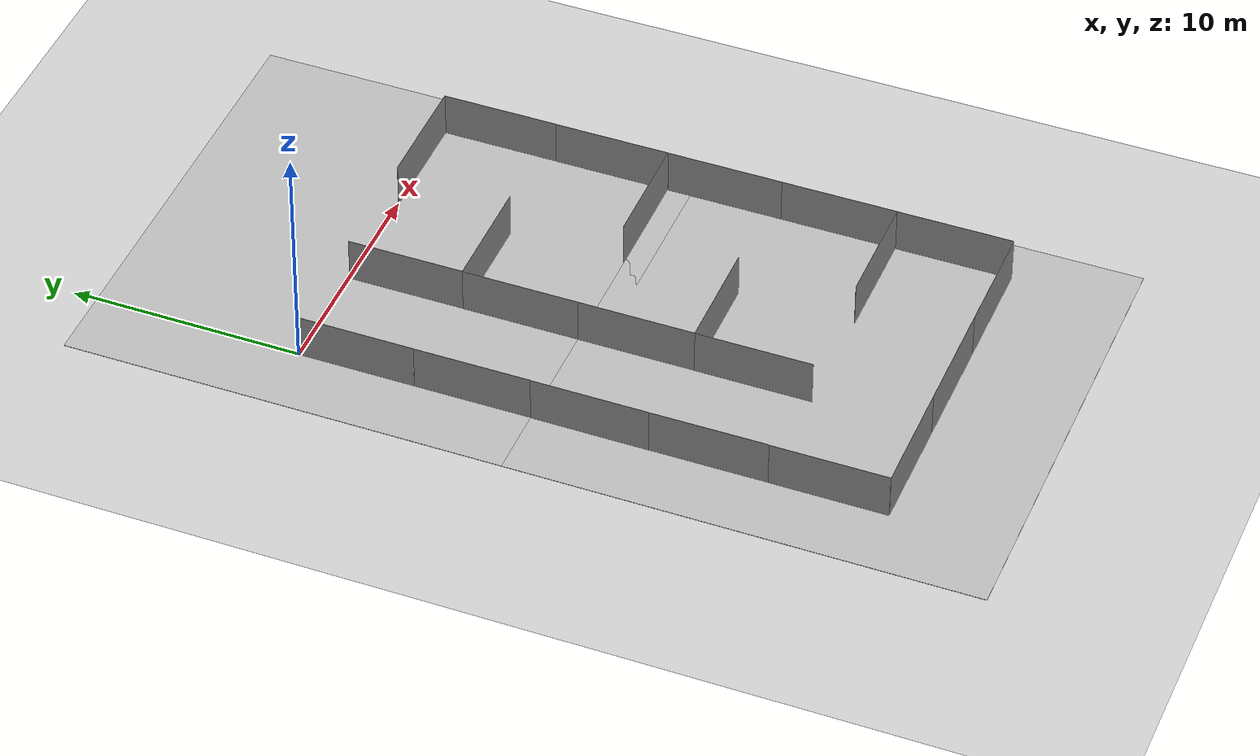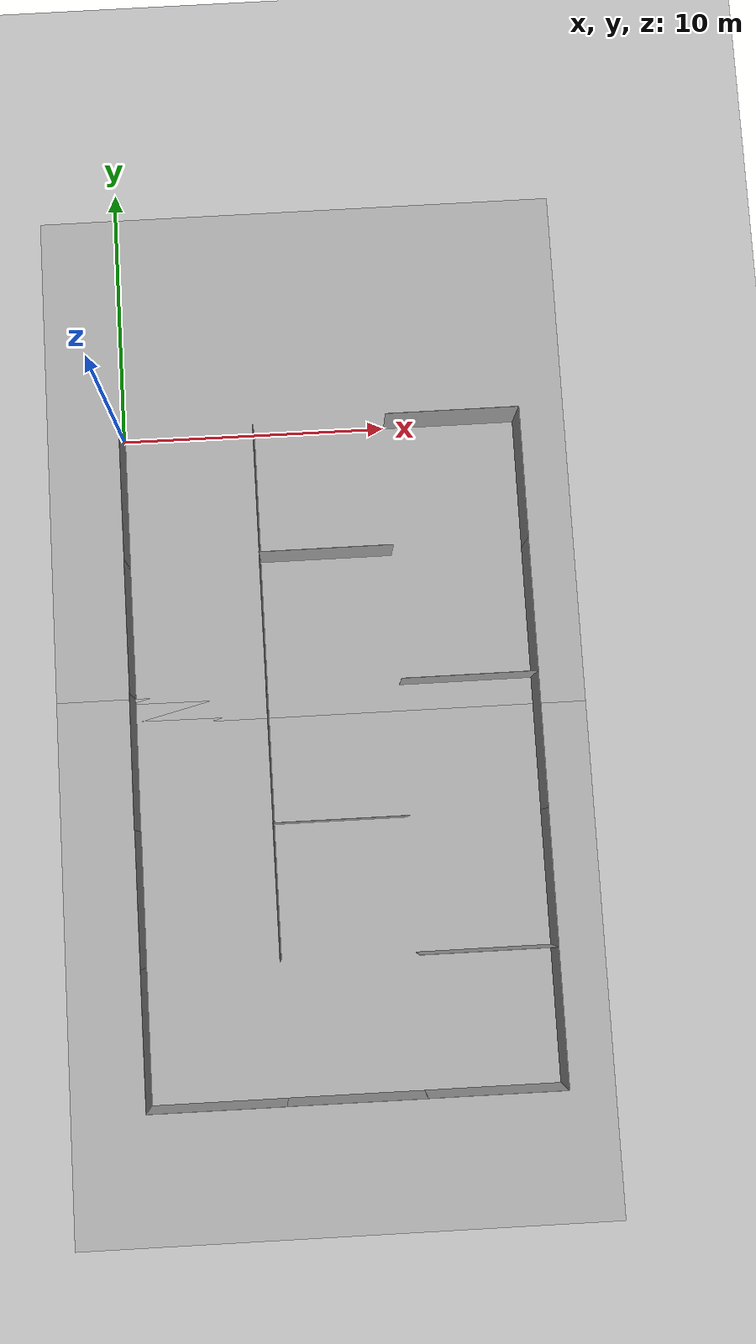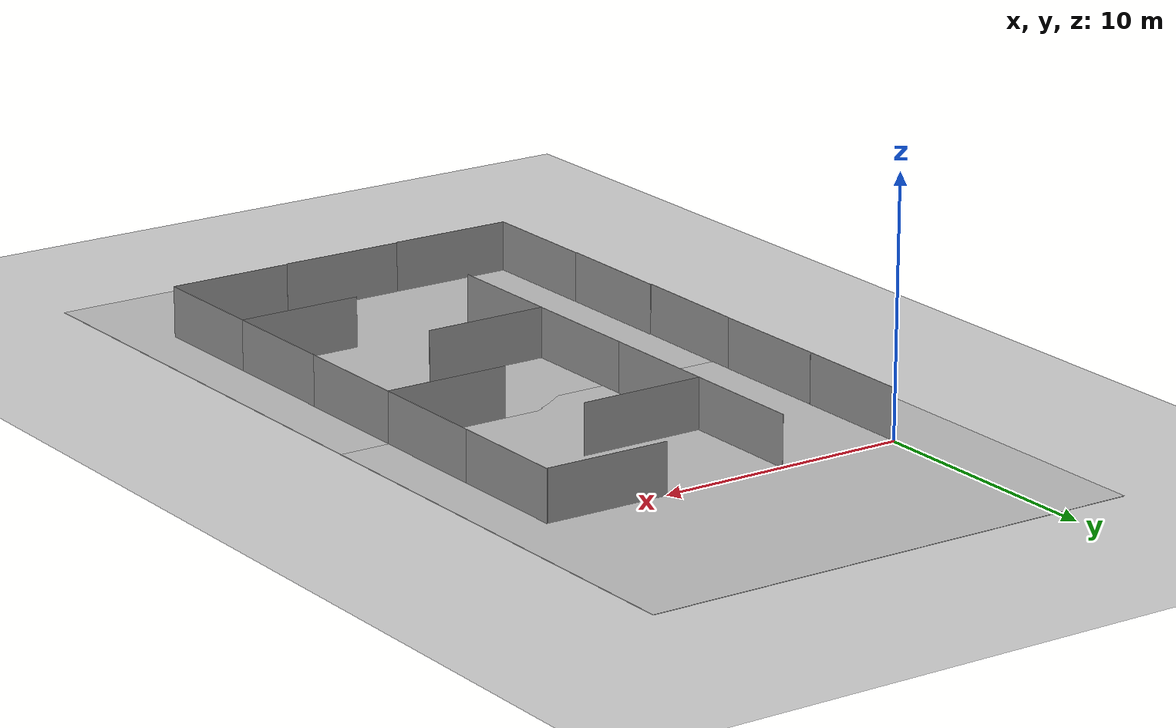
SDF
<sdf version="1.6">
 <world name="default">
  <light name="sun" type="directional">
   <pose>0 0 10 0 -0 0</pose>
   <diffuse>0.8 0.8 0.8 1</diffuse>
   <specular>0.2 0.2 0.2 1</specular>
   <attenuation>
    <range>1000</range>
    <constant>0.9</constant>
    <linear>0.01</linear>
    <quadratic>0.001</quadratic>
   </attenuation>
   <direction>-0.5 0.1 -0.9</direction>
  </light>
  <model name="ground_plane">
   <static>1</static>
   <link name="link">
    <collision name="collision">
     <geometry><plane><normal>0 0 1</normal><size>100 100</size></plane></geometry>
     <surface>
      <contact><collide_bitmask>65535</collide_bitmask></contact>
      <friction><ode><mu>100</mu><mu2>50</mu2></ode></friction>
     </surface>
    </collision>
    <visual name="visual">
     <cast_shadows>0</cast_shadows>
     <geometry><plane><normal>0 0 1</normal><size>100 100</size></plane></geometry>
     <material>
      <script><uri>file://media/materials/scripts/gazebo.material</uri><name>Gazebo/Grey</name></script>
     </material>
    </visual>
   </link>
  </model>
  <gravity>0 0 -9.8</gravity>
  <magnetic_field>6e-06 2.3e-05 -4.2e-05</magnetic_field>
  <atmosphere type="adiabatic"/>
  <physics name="default_physics" default="0" type="ode">
   <max_step_size>0.001</max_step_size>
   <real_time_factor>1</real_time_factor>
   <real_time_update_rate>1000</real_time_update_rate>
  </physics>
  <scene><ambient>0.4 0.4 0.4 1</ambient><background>0.7 0.7 0.7 1</background><shadows>1</shadows></scene>
  <spherical_coordinates>
   <surface_model>EARTH_WGS84</surface_model>
   <latitude_deg>0</latitude_deg>
   <longitude_deg>0</longitude_deg>
   <elevation>0</elevation>
   <heading_deg>0</heading_deg>
  </spherical_coordinates>
  <model name="5x0.01x2">
   <link name="link">
    <inertial>
     <mass>1</mass>
     <inertia>
      <ixx>0.166667</ixx>
      <ixy>0</ixy>
      <ixz>0</ixz>
      <iyy>0.166667</iyy>
      <iyz>0</iyz>
      <izz>0.166667</izz>
     </inertia>
    </inertial>
    <visual name="visual">
     <geometry><box><size>5 0.01 2</size></box></geometry>
     <material>
      <script><name>Gazebo/Grey</name><uri>file://media/materials/scripts/gazebo.material</uri></script>
      <shader type="pixel"><normal_map>__default__</normal_map></shader>
      <ambient>0.3 0.3 0.3 1</ambient>
      <diffuse>0.7 0.7 0.7 1</diffuse>
      <specular>0.01 0.01 0.01 1</specular>
      <emissive>0 0 0 1</emissive>
     </material>
     <pose>2.5 0 1 0 -0 0</pose>
    </visual>
    <collision name="collision">
     <pose>2.5 0 1 0 -0 0</pose>
     <geometry><box><size>5 0.01 2</size></box></geometry>
     <surface>
      <friction>
       <ode><mu>1</mu><mu2>1</mu2><fdir1>0 0 0</fdir1><slip1>0</slip1><slip2>0</slip2></ode>
       <torsional>
        <coefficient>1</coefficient>
        <patch_radius>0</patch_radius>
        <surface_radius>0</surface_radius>
        <use_patch_radius>1</use_patch_radius>
        <ode><slip>0</slip></ode>
       </torsional>
      </friction>
      <bounce><restitution_coefficient>0</restitution_coefficient><threshold>1e+06</threshold></bounce>
      <contact>
       <collide_without_contact>0</collide_without_contact>
       <collide_without_contact_bitmask>1</collide_without_contact_bitmask>
       <collide_bitmask>1</collide_bitmask>
       <ode>
        <soft_cfm>0</soft_cfm>
        <soft_erp>0.2</soft_erp>
        <kp>1e+13</kp>
        <kd>1</kd>
        <max_vel>0.01</max_vel>
        <min_depth>0</min_depth>
       </ode>
       <bullet>
        <split_impulse>1</split_impulse>
        <split_impulse_penetration_threshold>-0.01</split_impulse_penetration_threshold>
        <soft_cfm>0</soft_cfm>
        <soft_erp>0.2</soft_erp>
        <kp>1e+13</kp>
        <kd>1</kd>
       </bullet>
      </contact>
     </surface>
    </collision>
   </link>
   <static>1</static>
   <pose>0 0 -0 -1e-06 -1e-06 -1.57</pose>
  </model>
  <model name="5x0.01x2_clone">
   <link name="link">
    <inertial>
     <mass>1</mass>
     <inertia>
      <ixx>0.166667</ixx>
      <ixy>0</ixy>
      <ixz>0</ixz>
      <iyy>0.166667</iyy>
      <iyz>0</iyz>
      <izz>0.166667</izz>
     </inertia>
    </inertial>
    <visual name="visual">
     <geometry><box><size>5 0.01 2</size></box></geometry>
     <material>
      <script><name>Gazebo/Grey</name><uri>file://media/materials/scripts/gazebo.material</uri></script>
      <shader type="pixel"><normal_map>__default__</normal_map></shader>
      <ambient>0.3 0.3 0.3 1</ambient>
      <diffuse>0.7 0.7 0.7 1</diffuse>
      <specular>0.01 0.01 0.01 1</specular>
      <emissive>0 0 0 1</emissive>
     </material>
     <pose>2.5 0 1 0 -0 0</pose>
    </visual>
    <collision name="collision">
     <pose>2.5 0 1 0 -0 0</pose>
     <geometry><box><size>5 0.01 2</size></box></geometry>
     <surface>
      <friction>
       <ode><mu>1</mu><mu2>1</mu2><fdir1>0 0 0</fdir1><slip1>0</slip1><slip2>0</slip2></ode>
       <torsional>
        <coefficient>1</coefficient>
        <patch_radius>0</patch_radius>
        <surface_radius>0</surface_radius>
        <use_patch_radius>1</use_patch_radius>
        <ode><slip>0</slip></ode>
       </torsional>
      </friction>
      <bounce><restitution_coefficient>0</restitution_coefficient><threshold>1e+06</threshold></bounce>
      <contact>
       <collide_without_contact>0</collide_without_contact>
       <collide_without_contact_bitmask>1</collide_without_contact_bitmask>
       <collide_bitmask>1</collide_bitmask>
       <ode>
        <soft_cfm>0</soft_cfm>
        <soft_erp>0.2</soft_erp>
        <kp>1e+13</kp>
        <kd>1</kd>
        <max_vel>0.01</max_vel>
        <min_depth>0</min_depth>
       </ode>
       <bullet>
        <split_impulse>1</split_impulse>
        <split_impulse_penetration_threshold>-0.01</split_impulse_penetration_threshold>
        <soft_cfm>0</soft_cfm>
        <soft_erp>0.2</soft_erp>
        <kp>1e+13</kp>
        <kd>1</kd>
       </bullet>
      </contact>
     </surface>
    </collision>
   </link>
   <static>1</static>
   <pose>-0.001239 -5.01197 -6e-06 1e-06 -4e-06 -1.56825</pose>
  </model>
  <model name="5x0.01x2_clone_0">
   <link name="link">
    <inertial>
     <mass>1</mass>
     <inertia>
      <ixx>0.166667</ixx>
      <ixy>0</ixy>
      <ixz>0</ixz>
      <iyy>0.166667</iyy>
      <iyz>0</iyz>
      <izz>0.166667</izz>
     </inertia>
    </inertial>
    <visual name="visual">
     <geometry><box><size>5 0.01 2</size></box></geometry>
     <material>
      <script><name>Gazebo/Grey</name><uri>file://media/materials/scripts/gazebo.material</uri></script>
      <shader type="pixel"><normal_map>__default__</normal_map></shader>
      <ambient>0.3 0.3 0.3 1</ambient>
      <diffuse>0.7 0.7 0.7 1</diffuse>
      <specular>0.01 0.01 0.01 1</specular>
      <emissive>0 0 0 1</emissive>
     </material>
     <pose>2.5 0 1 0 -0 0</pose>
    </visual>
    <collision name="collision">
     <pose>2.5 0 1 0 -0 0</pose>
     <geometry><box><size>5 0.01 2</size></box></geometry>
     <surface>
      <friction>
       <ode><mu>1</mu><mu2>1</mu2><fdir1>0 0 0</fdir1><slip1>0</slip1><slip2>0</slip2></ode>
       <torsional>
        <coefficient>1</coefficient>
        <patch_radius>0</patch_radius>
        <surface_radius>0</surface_radius>
        <use_patch_radius>1</use_patch_radius>
        <ode><slip>0</slip></ode>
       </torsional>
      </friction>
      <bounce><restitution_coefficient>0</restitution_coefficient><threshold>1e+06</threshold></bounce>
      <contact>
       <collide_without_contact>0</collide_without_contact>
       <collide_without_contact_bitmask>1</collide_without_contact_bitmask>
       <collide_bitmask>1</collide_bitmask>
       <ode>
        <soft_cfm>0</soft_cfm>
        <soft_erp>0.2</soft_erp>
        <kp>1e+13</kp>
        <kd>1</kd>
        <max_vel>0.01</max_vel>
        <min_depth>0</min_depth>
       </ode>
       <bullet>
        <split_impulse>1</split_impulse>
        <split_impulse_penetration_threshold>-0.01</split_impulse_penetration_threshold>
        <soft_cfm>0</soft_cfm>
        <soft_erp>0.2</soft_erp>
        <kp>1e+13</kp>
        <kd>1</kd>
       </bullet>
      </contact>
     </surface>
    </collision>
   </link>
   <static>1</static>
   <pose>-6.2e-05 -9.99999 -7e-06 2e-06 -0.003279 -1.57326</pose>
  </model>
  <model name="5x0.01x2_clone_1">
   <link name="link">
    <inertial>
     <mass>1</mass>
     <inertia>
      <ixx>0.166667</ixx>
      <ixy>0</ixy>
      <ixz>0</ixz>
      <iyy>0.166667</iyy>
      <iyz>0</iyz>
      <izz>0.166667</izz>
     </inertia>
    </inertial>
    <visual name="visual">
     <geometry><box><size>5 0.01 2</size></box></geometry>
     <material>
      <script><name>Gazebo/Grey</name><uri>file://media/materials/scripts/gazebo.material</uri></script>
      <shader type="pixel"><normal_map>__default__</normal_map></shader>
      <ambient>0.3 0.3 0.3 1</ambient>
      <diffuse>0.7 0.7 0.7 1</diffuse>
      <specular>0.01 0.01 0.01 1</specular>
      <emissive>0 0 0 1</emissive>
     </material>
     <pose>2.5 0 1 0 -0 0</pose>
    </visual>
    <collision name="collision">
     <pose>2.5 0 1 0 -0 0</pose>
     <geometry><box><size>5 0.01 2</size></box></geometry>
     <surface>
      <friction>
       <ode><mu>1</mu><mu2>1</mu2><fdir1>0 0 0</fdir1><slip1>0</slip1><slip2>0</slip2></ode>
       <torsional>
        <coefficient>1</coefficient>
        <patch_radius>0</patch_radius>
        <surface_radius>0</surface_radius>
        <use_patch_radius>1</use_patch_radius>
        <ode><slip>0</slip></ode>
       </torsional>
      </friction>
      <bounce><restitution_coefficient>0</restitution_coefficient><threshold>1e+06</threshold></bounce>
      <contact>
       <collide_without_contact>0</collide_without_contact>
       <collide_without_contact_bitmask>1</collide_without_contact_bitmask>
       <collide_bitmask>1</collide_bitmask>
       <ode>
        <soft_cfm>0</soft_cfm>
        <soft_erp>0.2</soft_erp>
        <kp>1e+13</kp>
        <kd>1</kd>
        <max_vel>0.01</max_vel>
        <min_depth>0</min_depth>
       </ode>
       <bullet>
        <split_impulse>1</split_impulse>
        <split_impulse_penetration_threshold>-0.01</split_impulse_penetration_threshold>
        <soft_cfm>0</soft_cfm>
        <soft_erp>0.2</soft_erp>
        <kp>1e+13</kp>
        <kd>1</kd>
       </bullet>
      </contact>
     </surface>
    </collision>
   </link>
   <static>1</static>
   <pose>0 -14.9983 -0 -0 -0.003168 -1.57001</pose>
  </model>
  <model name="5x0.01x2_clone_2">
   <link name="link">
    <inertial>
     <mass>1</mass>
     <inertia>
      <ixx>0.166667</ixx>
      <ixy>0</ixy>
      <ixz>0</ixz>
      <iyy>0.166667</iyy>
      <iyz>0</iyz>
      <izz>0.166667</izz>
     </inertia>
    </inertial>
    <visual name="visual">
     <geometry><box><size>5 0.01 2</size></box></geometry>
     <material>
      <script><name>Gazebo/Grey</name><uri>file://media/materials/scripts/gazebo.material</uri></script>
      <shader type="pixel"><normal_map>__default__</normal_map></shader>
      <ambient>0.3 0.3 0.3 1</ambient>
      <diffuse>0.7 0.7 0.7 1</diffuse>
      <specular>0.01 0.01 0.01 1</specular>
      <emissive>0 0 0 1</emissive>
     </material>
     <pose>2.5 0 1 0 -0 0</pose>
    </visual>
    <collision name="collision">
     <pose>2.5 0 1 0 -0 0</pose>
     <geometry><box><size>5 0.01 2</size></box></geometry>
     <surface>
      <friction>
       <ode><mu>1</mu><mu2>1</mu2><fdir1>0 0 0</fdir1><slip1>0</slip1><slip2>0</slip2></ode>
       <torsional>
        <coefficient>1</coefficient>
        <patch_radius>0</patch_radius>
        <surface_radius>0</surface_radius>
        <use_patch_radius>1</use_patch_radius>
        <ode><slip>0</slip></ode>
       </torsional>
      </friction>
      <bounce><restitution_coefficient>0</restitution_coefficient><threshold>1e+06</threshold></bounce>
      <contact>
       <collide_without_contact>0</collide_without_contact>
       <collide_without_contact_bitmask>1</collide_without_contact_bitmask>
       <collide_bitmask>1</collide_bitmask>
       <ode>
        <soft_cfm>0</soft_cfm>
        <soft_erp>0.2</soft_erp>
        <kp>1e+13</kp>
        <kd>1</kd>
        <max_vel>0.01</max_vel>
        <min_depth>0</min_depth>
       </ode>
       <bullet>
        <split_impulse>1</split_impulse>
        <split_impulse_penetration_threshold>-0.01</split_impulse_penetration_threshold>
        <soft_cfm>0</soft_cfm>
        <soft_erp>0.2</soft_erp>
        <kp>1e+13</kp>
        <kd>1</kd>
       </bullet>
      </contact>
     </surface>
    </collision>
   </link>
   <static>1</static>
   <pose>-1e-06 -19.9983 -2e-06 -2e-06 -0.000237 -1.57005</pose>
  </model>
  <model name="5x0.01x2_clone_2_clone">
   <link name="link">
    <inertial>
     <mass>1</mass>
     <inertia>
      <ixx>0.166667</ixx>
      <ixy>0</ixy>
      <ixz>0</ixz>
      <iyy>0.166667</iyy>
      <iyz>0</iyz>
      <izz>0.166667</izz>
     </inertia>
    </inertial>
    <visual name="visual">
     <geometry><box><size>5 0.01 2</size></box></geometry>
     <material>
      <script><name>Gazebo/Grey</name><uri>file://media/materials/scripts/gazebo.material</uri></script>
      <shader type="pixel"><normal_map>__default__</normal_map></shader>
      <ambient>0.3 0.3 0.3 1</ambient>
      <diffuse>0.7 0.7 0.7 1</diffuse>
      <specular>0.01 0.01 0.01 1</specular>
      <emissive>0 0 0 1</emissive>
     </material>
     <pose>2.5 0 1 0 -0 0</pose>
    </visual>
    <collision name="collision">
     <pose>2.5 0 1 0 -0 0</pose>
     <geometry><box><size>5 0.01 2</size></box></geometry>
     <surface>
      <friction>
       <ode><mu>1</mu><mu2>1</mu2><fdir1>0 0 0</fdir1><slip1>0</slip1><slip2>0</slip2></ode>
       <torsional>
        <coefficient>1</coefficient>
        <patch_radius>0</patch_radius>
        <surface_radius>0</surface_radius>
        <use_patch_radius>1</use_patch_radius>
        <ode><slip>0</slip></ode>
       </torsional>
      </friction>
      <bounce><restitution_coefficient>0</restitution_coefficient><threshold>1e+06</threshold></bounce>
      <contact>
       <collide_without_contact>0</collide_without_contact>
       <collide_without_contact_bitmask>1</collide_without_contact_bitmask>
       <collide_bitmask>1</collide_bitmask>
       <ode>
        <soft_cfm>0</soft_cfm>
        <soft_erp>0.2</soft_erp>
        <kp>1e+13</kp>
        <kd>1</kd>
        <max_vel>0.01</max_vel>
        <min_depth>0</min_depth>
       </ode>
       <bullet>
        <split_impulse>1</split_impulse>
        <split_impulse_penetration_threshold>-0.01</split_impulse_penetration_threshold>
        <soft_cfm>0</soft_cfm>
        <soft_erp>0.2</soft_erp>
        <kp>1e+13</kp>
        <kd>1</kd>
       </bullet>
      </contact>
     </surface>
    </collision>
   </link>
   <static>1</static>
   <pose>5.00001 0.003767 -8e-06 1e-06 -0.000462 -1.56932</pose>
  </model>
  <model name="5x0.01x2_clone_2_clone_0">
   <link name="link">
    <inertial>
     <mass>1</mass>
     <inertia>
      <ixx>0.166667</ixx>
      <ixy>0</ixy>
      <ixz>0</ixz>
      <iyy>0.166667</iyy>
      <iyz>0</iyz>
      <izz>0.166667</izz>
     </inertia>
    </inertial>
    <visual name="visual">
     <geometry><box><size>5 0.01 2</size></box></geometry>
     <material>
      <script><name>Gazebo/Grey</name><uri>file://media/materials/scripts/gazebo.material</uri></script>
      <shader type="pixel"><normal_map>__default__</normal_map></shader>
      <ambient>0.3 0.3 0.3 1</ambient>
      <diffuse>0.7 0.7 0.7 1</diffuse>
      <specular>0.01 0.01 0.01 1</specular>
      <emissive>0 0 0 1</emissive>
     </material>
     <pose>2.5 0 1 0 -0 0</pose>
    </visual>
    <collision name="collision">
     <pose>2.5 0 1 0 -0 0</pose>
     <geometry><box><size>5 0.01 2</size></box></geometry>
     <surface>
      <friction>
       <ode><mu>1</mu><mu2>1</mu2><fdir1>0 0 0</fdir1><slip1>0</slip1><slip2>0</slip2></ode>
       <torsional>
        <coefficient>1</coefficient>
        <patch_radius>0</patch_radius>
        <surface_radius>0</surface_radius>
        <use_patch_radius>1</use_patch_radius>
        <ode><slip>0</slip></ode>
       </torsional>
      </friction>
      <bounce><restitution_coefficient>0</restitution_coefficient><threshold>1e+06</threshold></bounce>
      <contact>
       <collide_without_contact>0</collide_without_contact>
       <collide_without_contact_bitmask>1</collide_without_contact_bitmask>
       <collide_bitmask>1</collide_bitmask>
       <ode>
        <soft_cfm>0</soft_cfm>
        <soft_erp>0.2</soft_erp>
        <kp>1e+13</kp>
        <kd>1</kd>
        <max_vel>0.01</max_vel>
        <min_depth>0</min_depth>
       </ode>
       <bullet>
        <split_impulse>1</split_impulse>
        <split_impulse_penetration_threshold>-0.01</split_impulse_penetration_threshold>
        <soft_cfm>0</soft_cfm>
        <soft_erp>0.2</soft_erp>
        <kp>1e+13</kp>
        <kd>1</kd>
       </bullet>
      </contact>
     </surface>
    </collision>
   </link>
   <static>1</static>
   <pose>4.99749 -4.99834 -2e-06 2e-06 -8.3e-05 -1.56943</pose>
  </model>
  <model name="5x0.01x2_clone_2_clone_1">
   <link name="link">
    <inertial>
     <mass>1</mass>
     <inertia>
      <ixx>0.166667</ixx>
      <ixy>0</ixy>
      <ixz>0</ixz>
      <iyy>0.166667</iyy>
      <iyz>0</iyz>
      <izz>0.166667</izz>
     </inertia>
    </inertial>
    <visual name="visual">
     <geometry><box><size>5 0.01 2</size></box></geometry>
     <material>
      <script><name>Gazebo/Grey</name><uri>file://media/materials/scripts/gazebo.material</uri></script>
      <shader type="pixel"><normal_map>__default__</normal_map></shader>
      <ambient>0.3 0.3 0.3 1</ambient>
      <diffuse>0.7 0.7 0.7 1</diffuse>
      <specular>0.01 0.01 0.01 1</specular>
      <emissive>0 0 0 1</emissive>
     </material>
     <pose>2.5 0 1 0 -0 0</pose>
    </visual>
    <collision name="collision">
     <pose>2.5 0 1 0 -0 0</pose>
     <geometry><box><size>5 0.01 2</size></box></geometry>
     <surface>
      <friction>
       <ode><mu>1</mu><mu2>1</mu2><fdir1>0 0 0</fdir1><slip1>0</slip1><slip2>0</slip2></ode>
       <torsional>
        <coefficient>1</coefficient>
        <patch_radius>0</patch_radius>
        <surface_radius>0</surface_radius>
        <use_patch_radius>1</use_patch_radius>
        <ode><slip>0</slip></ode>
       </torsional>
      </friction>
      <bounce><restitution_coefficient>0</restitution_coefficient><threshold>1e+06</threshold></bounce>
      <contact>
       <collide_without_contact>0</collide_without_contact>
       <collide_without_contact_bitmask>1</collide_without_contact_bitmask>
       <collide_bitmask>1</collide_bitmask>
       <ode>
        <soft_cfm>0</soft_cfm>
        <soft_erp>0.2</soft_erp>
        <kp>1e+13</kp>
        <kd>1</kd>
        <max_vel>0.01</max_vel>
        <min_depth>0</min_depth>
       </ode>
       <bullet>
        <split_impulse>1</split_impulse>
        <split_impulse_penetration_threshold>-0.01</split_impulse_penetration_threshold>
        <soft_cfm>0</soft_cfm>
        <soft_erp>0.2</soft_erp>
        <kp>1e+13</kp>
        <kd>1</kd>
       </bullet>
      </contact>
     </surface>
    </collision>
   </link>
   <static>1</static>
   <pose>5.00001 -9.99835 -4e-06 1e-06 -3e-06 -1.56951</pose>
  </model>
  <model name="5x0.01x2_clone_2_clone_2">
   <link name="link">
    <inertial>
     <mass>1</mass>
     <inertia>
      <ixx>0.166667</ixx>
      <ixy>0</ixy>
      <ixz>0</ixz>
      <iyy>0.166667</iyy>
      <iyz>0</iyz>
      <izz>0.166667</izz>
     </inertia>
    </inertial>
    <visual name="visual">
     <geometry><box><size>5 0.01 2</size></box></geometry>
     <material>
      <script><name>Gazebo/Grey</name><uri>file://media/materials/scripts/gazebo.material</uri></script>
      <shader type="pixel"><normal_map>__default__</normal_map></shader>
      <ambient>0.3 0.3 0.3 1</ambient>
      <diffuse>0.7 0.7 0.7 1</diffuse>
      <specular>0.01 0.01 0.01 1</specular>
      <emissive>0 0 0 1</emissive>
     </material>
     <pose>2.5 0 1 0 -0 0</pose>
    </visual>
    <collision name="collision">
     <pose>2.5 0 1 0 -0 0</pose>
     <geometry><box><size>5 0.01 2</size></box></geometry>
     <surface>
      <friction>
       <ode><mu>1</mu><mu2>1</mu2><fdir1>0 0 0</fdir1><slip1>0</slip1><slip2>0</slip2></ode>
       <torsional>
        <coefficient>1</coefficient>
        <patch_radius>0</patch_radius>
        <surface_radius>0</surface_radius>
        <use_patch_radius>1</use_patch_radius>
        <ode><slip>0</slip></ode>
       </torsional>
      </friction>
      <bounce><restitution_coefficient>0</restitution_coefficient><threshold>1e+06</threshold></bounce>
      <contact>
       <collide_without_contact>0</collide_without_contact>
       <collide_without_contact_bitmask>1</collide_without_contact_bitmask>
       <collide_bitmask>1</collide_bitmask>
       <ode>
        <soft_cfm>0</soft_cfm>
        <soft_erp>0.2</soft_erp>
        <kp>1e+13</kp>
        <kd>1</kd>
        <max_vel>0.01</max_vel>
        <min_depth>0</min_depth>
       </ode>
       <bullet>
        <split_impulse>1</split_impulse>
        <split_impulse_penetration_threshold>-0.01</split_impulse_penetration_threshold>
        <soft_cfm>0</soft_cfm>
        <soft_erp>0.2</soft_erp>
        <kp>1e+13</kp>
        <kd>1</kd>
       </bullet>
      </contact>
     </surface>
    </collision>
   </link>
   <static>1</static>
   <pose>4.99746 -15.0025 -4e-06 -1e-06 -0.000332 -1.56993</pose>
  </model>
  <model name="5x0.01x2_clone_2_clone_3">
   <link name="link">
    <inertial>
     <mass>1</mass>
     <inertia>
      <ixx>0.166667</ixx>
      <ixy>0</ixy>
      <ixz>0</ixz>
      <iyy>0.166667</iyy>
      <iyz>0</iyz>
      <izz>0.166667</izz>
     </inertia>
    </inertial>
    <visual name="visual">
     <geometry><box><size>5 0.01 2</size></box></geometry>
     <material>
      <script><name>Gazebo/Grey</name><uri>file://media/materials/scripts/gazebo.material</uri></script>
      <shader type="pixel"><normal_map>__default__</normal_map></shader>
      <ambient>0.3 0.3 0.3 1</ambient>
      <diffuse>0.7 0.7 0.7 1</diffuse>
      <specular>0.01 0.01 0.01 1</specular>
      <emissive>0 0 0 1</emissive>
     </material>
     <pose>2.5 0 1 0 -0 0</pose>
    </visual>
    <collision name="collision">
     <pose>2.5 0 1 0 -0 0</pose>
     <geometry><box><size>5 0.01 2</size></box></geometry>
     <surface>
      <friction>
       <ode><mu>1</mu><mu2>1</mu2><fdir1>0 0 0</fdir1><slip1>0</slip1><slip2>0</slip2></ode>
       <torsional>
        <coefficient>1</coefficient>
        <patch_radius>0</patch_radius>
        <surface_radius>0</surface_radius>
        <use_patch_radius>1</use_patch_radius>
        <ode><slip>0</slip></ode>
       </torsional>
      </friction>
      <bounce><restitution_coefficient>0</restitution_coefficient><threshold>1e+06</threshold></bounce>
      <contact>
       <collide_without_contact>0</collide_without_contact>
       <collide_without_contact_bitmask>1</collide_without_contact_bitmask>
       <collide_bitmask>1</collide_bitmask>
       <ode>
        <soft_cfm>0</soft_cfm>
        <soft_erp>0.2</soft_erp>
        <kp>1e+13</kp>
        <kd>1</kd>
        <max_vel>0.01</max_vel>
        <min_depth>0</min_depth>
       </ode>
       <bullet>
        <split_impulse>1</split_impulse>
        <split_impulse_penetration_threshold>-0.01</split_impulse_penetration_threshold>
        <soft_cfm>0</soft_cfm>
        <soft_erp>0.2</soft_erp>
        <kp>1e+13</kp>
        <kd>1</kd>
       </bullet>
      </contact>
     </surface>
    </collision>
   </link>
   <static>1</static>
   <pose>15.0025 8e-06 -4e-06 -1e-06 -0.001337 -1.57037</pose>
  </model>
  <model name="5x0.01x2_clone_2_clone_4">
   <link name="link">
    <inertial>
     <mass>1</mass>
     <inertia>
      <ixx>0.166667</ixx>
      <ixy>0</ixy>
      <ixz>0</ixz>
      <iyy>0.166667</iyy>
      <iyz>0</iyz>
      <izz>0.166667</izz>
     </inertia>
    </inertial>
    <visual name="visual">
     <geometry><box><size>5 0.01 2</size></box></geometry>
     <material>
      <script><name>Gazebo/Grey</name><uri>file://media/materials/scripts/gazebo.material</uri></script>
      <shader type="pixel"><normal_map>__default__</normal_map></shader>
      <ambient>0.3 0.3 0.3 1</ambient>
      <diffuse>0.7 0.7 0.7 1</diffuse>
      <specular>0.01 0.01 0.01 1</specular>
      <emissive>0 0 0 1</emissive>
     </material>
     <pose>2.5 0 1 0 -0 0</pose>
    </visual>
    <collision name="collision">
     <pose>2.5 0 1 0 -0 0</pose>
     <geometry><box><size>5 0.01 2</size></box></geometry>
     <surface>
      <friction>
       <ode><mu>1</mu><mu2>1</mu2><fdir1>0 0 0</fdir1><slip1>0</slip1><slip2>0</slip2></ode>
       <torsional>
        <coefficient>1</coefficient>
        <patch_radius>0</patch_radius>
        <surface_radius>0</surface_radius>
        <use_patch_radius>1</use_patch_radius>
        <ode><slip>0</slip></ode>
       </torsional>
      </friction>
      <bounce><restitution_coefficient>0</restitution_coefficient><threshold>1e+06</threshold></bounce>
      <contact>
       <collide_without_contact>0</collide_without_contact>
       <collide_without_contact_bitmask>1</collide_without_contact_bitmask>
       <collide_bitmask>1</collide_bitmask>
       <ode>
        <soft_cfm>0</soft_cfm>
        <soft_erp>0.2</soft_erp>
        <kp>1e+13</kp>
        <kd>1</kd>
        <max_vel>0.01</max_vel>
        <min_depth>0</min_depth>
       </ode>
       <bullet>
        <split_impulse>1</split_impulse>
        <split_impulse_penetration_threshold>-0.01</split_impulse_penetration_threshold>
        <soft_cfm>0</soft_cfm>
        <soft_erp>0.2</soft_erp>
        <kp>1e+13</kp>
        <kd>1</kd>
       </bullet>
      </contact>
     </surface>
    </collision>
   </link>
   <static>1</static>
   <pose>15 -5 -3e-06 -2e-06 -0.000294 -1.5698</pose>
  </model>
  <model name="5x0.01x2_clone_2_clone_5">
   <link name="link">
    <inertial>
     <mass>1</mass>
     <inertia>
      <ixx>0.166667</ixx>
      <ixy>0</ixy>
      <ixz>0</ixz>
      <iyy>0.166667</iyy>
      <iyz>0</iyz>
      <izz>0.166667</izz>
     </inertia>
    </inertial>
    <visual name="visual">
     <geometry><box><size>5 0.01 2</size></box></geometry>
     <material>
      <script><name>Gazebo/Grey</name><uri>file://media/materials/scripts/gazebo.material</uri></script>
      <shader type="pixel"><normal_map>__default__</normal_map></shader>
      <ambient>0.3 0.3 0.3 1</ambient>
      <diffuse>0.7 0.7 0.7 1</diffuse>
      <specular>0.01 0.01 0.01 1</specular>
      <emissive>0 0 0 1</emissive>
     </material>
     <pose>2.5 0 1 0 -0 0</pose>
    </visual>
    <collision name="collision">
     <pose>2.5 0 1 0 -0 0</pose>
     <geometry><box><size>5 0.01 2</size></box></geometry>
     <surface>
      <friction>
       <ode><mu>1</mu><mu2>1</mu2><fdir1>0 0 0</fdir1><slip1>0</slip1><slip2>0</slip2></ode>
       <torsional>
        <coefficient>1</coefficient>
        <patch_radius>0</patch_radius>
        <surface_radius>0</surface_radius>
        <use_patch_radius>1</use_patch_radius>
        <ode><slip>0</slip></ode>
       </torsional>
      </friction>
      <bounce><restitution_coefficient>0</restitution_coefficient><threshold>1e+06</threshold></bounce>
      <contact>
       <collide_without_contact>0</collide_without_contact>
       <collide_without_contact_bitmask>1</collide_without_contact_bitmask>
       <collide_bitmask>1</collide_bitmask>
       <ode>
        <soft_cfm>0</soft_cfm>
        <soft_erp>0.2</soft_erp>
        <kp>1e+13</kp>
        <kd>1</kd>
        <max_vel>0.01</max_vel>
        <min_depth>0</min_depth>
       </ode>
       <bullet>
        <split_impulse>1</split_impulse>
        <split_impulse_penetration_threshold>-0.01</split_impulse_penetration_threshold>
        <soft_cfm>0</soft_cfm>
        <soft_erp>0.2</soft_erp>
        <kp>1e+13</kp>
        <kd>1</kd>
       </bullet>
      </contact>
     </surface>
    </collision>
   </link>
   <static>1</static>
   <pose>15 -10 -3e-06 2e-06 -0.000138 -1.57006</pose>
  </model>
  <model name="5x0.01x2_clone_2_clone_6">
   <link name="link">
    <inertial>
     <mass>1</mass>
     <inertia>
      <ixx>0.166667</ixx>
      <ixy>0</ixy>
      <ixz>0</ixz>
      <iyy>0.166667</iyy>
      <iyz>0</iyz>
      <izz>0.166667</izz>
     </inertia>
    </inertial>
    <visual name="visual">
     <geometry><box><size>5 0.01 2</size></box></geometry>
     <material>
      <script><name>Gazebo/Grey</name><uri>file://media/materials/scripts/gazebo.material</uri></script>
      <shader type="pixel"><normal_map>__default__</normal_map></shader>
      <ambient>0.3 0.3 0.3 1</ambient>
      <diffuse>0.7 0.7 0.7 1</diffuse>
      <specular>0.01 0.01 0.01 1</specular>
      <emissive>0 0 0 1</emissive>
     </material>
     <pose>2.5 0 1 0 -0 0</pose>
    </visual>
    <collision name="collision">
     <pose>2.5 0 1 0 -0 0</pose>
     <geometry><box><size>5 0.01 2</size></box></geometry>
     <surface>
      <friction>
       <ode><mu>1</mu><mu2>1</mu2><fdir1>0 0 0</fdir1><slip1>0</slip1><slip2>0</slip2></ode>
       <torsional>
        <coefficient>1</coefficient>
        <patch_radius>0</patch_radius>
        <surface_radius>0</surface_radius>
        <use_patch_radius>1</use_patch_radius>
        <ode><slip>0</slip></ode>
       </torsional>
      </friction>
      <bounce><restitution_coefficient>0</restitution_coefficient><threshold>1e+06</threshold></bounce>
      <contact>
       <collide_without_contact>0</collide_without_contact>
       <collide_without_contact_bitmask>1</collide_without_contact_bitmask>
       <collide_bitmask>1</collide_bitmask>
       <ode>
        <soft_cfm>0</soft_cfm>
        <soft_erp>0.2</soft_erp>
        <kp>1e+13</kp>
        <kd>1</kd>
        <max_vel>0.01</max_vel>
        <min_depth>0</min_depth>
       </ode>
       <bullet>
        <split_impulse>1</split_impulse>
        <split_impulse_penetration_threshold>-0.01</split_impulse_penetration_threshold>
        <soft_cfm>0</soft_cfm>
        <soft_erp>0.2</soft_erp>
        <kp>1e+13</kp>
        <kd>1</kd>
       </bullet>
      </contact>
     </surface>
    </collision>
   </link>
   <static>1</static>
   <pose>15 -15 -5e-06 2e-06 -2e-06 -1.56975</pose>
  </model>
  <model name="5x0.01x2_clone_2_clone_7">
   <link name="link">
    <inertial>
     <mass>1</mass>
     <inertia>
      <ixx>0.166667</ixx>
      <ixy>0</ixy>
      <ixz>0</ixz>
      <iyy>0.166667</iyy>
      <iyz>0</iyz>
      <izz>0.166667</izz>
     </inertia>
    </inertial>
    <visual name="visual">
     <geometry><box><size>5 0.01 2</size></box></geometry>
     <material>
      <script><name>Gazebo/Grey</name><uri>file://media/materials/scripts/gazebo.material</uri></script>
      <shader type="pixel"><normal_map>__default__</normal_map></shader>
      <ambient>0.3 0.3 0.3 1</ambient>
      <diffuse>0.7 0.7 0.7 1</diffuse>
      <specular>0.01 0.01 0.01 1</specular>
      <emissive>0 0 0 1</emissive>
     </material>
     <pose>2.5 0 1 0 -0 0</pose>
    </visual>
    <collision name="collision">
     <pose>2.5 0 1 0 -0 0</pose>
     <geometry><box><size>5 0.01 2</size></box></geometry>
     <surface>
      <friction>
       <ode><mu>1</mu><mu2>1</mu2><fdir1>0 0 0</fdir1><slip1>0</slip1><slip2>0</slip2></ode>
       <torsional>
        <coefficient>1</coefficient>
        <patch_radius>0</patch_radius>
        <surface_radius>0</surface_radius>
        <use_patch_radius>1</use_patch_radius>
        <ode><slip>0</slip></ode>
       </torsional>
      </friction>
      <bounce><restitution_coefficient>0</restitution_coefficient><threshold>1e+06</threshold></bounce>
      <contact>
       <collide_without_contact>0</collide_without_contact>
       <collide_without_contact_bitmask>1</collide_without_contact_bitmask>
       <collide_bitmask>1</collide_bitmask>
       <ode>
        <soft_cfm>0</soft_cfm>
        <soft_erp>0.2</soft_erp>
        <kp>1e+13</kp>
        <kd>1</kd>
        <max_vel>0.01</max_vel>
        <min_depth>0</min_depth>
       </ode>
       <bullet>
        <split_impulse>1</split_impulse>
        <split_impulse_penetration_threshold>-0.01</split_impulse_penetration_threshold>
        <soft_cfm>0</soft_cfm>
        <soft_erp>0.2</soft_erp>
        <kp>1e+13</kp>
        <kd>1</kd>
       </bullet>
      </contact>
     </surface>
    </collision>
   </link>
   <static>1</static>
   <pose>15 -20 -5e-06 -2e-06 -8e-06 -1.56956</pose>
  </model>
  <model name="5x0.01x2_clone_3">
   <link name="link">
    <inertial>
     <mass>1</mass>
     <inertia>
      <ixx>0.166667</ixx>
      <ixy>0</ixy>
      <ixz>0</ixz>
      <iyy>0.166667</iyy>
      <iyz>0</iyz>
      <izz>0.166667</izz>
     </inertia>
    </inertial>
    <visual name="visual">
     <geometry><box><size>5 0.01 2</size></box></geometry>
     <material>
      <script><name>Gazebo/Grey</name><uri>file://media/materials/scripts/gazebo.material</uri></script>
      <shader type="pixel"><normal_map>__default__</normal_map></shader>
      <ambient>0.3 0.3 0.3 1</ambient>
      <diffuse>0.7 0.7 0.7 1</diffuse>
      <specular>0.01 0.01 0.01 1</specular>
      <emissive>0 0 0 1</emissive>
     </material>
     <pose>2.5 0 1 0 -0 0</pose>
    </visual>
    <collision name="collision">
     <pose>2.5 0 1 0 -0 0</pose>
     <geometry><box><size>5 0.01 2</size></box></geometry>
     <surface>
      <friction>
       <ode><mu>1</mu><mu2>1</mu2><fdir1>0 0 0</fdir1><slip1>0</slip1><slip2>0</slip2></ode>
       <torsional>
        <coefficient>1</coefficient>
        <patch_radius>0</patch_radius>
        <surface_radius>0</surface_radius>
        <use_patch_radius>1</use_patch_radius>
        <ode><slip>0</slip></ode>
       </torsional>
      </friction>
      <bounce><restitution_coefficient>0</restitution_coefficient><threshold>1e+06</threshold></bounce>
      <contact>
       <collide_without_contact>0</collide_without_contact>
       <collide_without_contact_bitmask>1</collide_without_contact_bitmask>
       <collide_bitmask>1</collide_bitmask>
       <ode>
        <soft_cfm>0</soft_cfm>
        <soft_erp>0.2</soft_erp>
        <kp>1e+13</kp>
        <kd>1</kd>
        <max_vel>0.01</max_vel>
        <min_depth>0</min_depth>
       </ode>
       <bullet>
        <split_impulse>1</split_impulse>
        <split_impulse_penetration_threshold>-0.01</split_impulse_penetration_threshold>
        <soft_cfm>0</soft_cfm>
        <soft_erp>0.2</soft_erp>
        <kp>1e+13</kp>
        <kd>1</kd>
       </bullet>
      </contact>
     </surface>
    </collision>
   </link>
   <static>1</static>
   <pose>-0.000287 -25.0033 -4e-06 1e-06 -0.003272 0.000165</pose>
  </model>
  <model name="5x0.01x2_clone_3_clone">
   <link name="link">
    <inertial>
     <mass>1</mass>
     <inertia>
      <ixx>0.166667</ixx>
      <ixy>0</ixy>
      <ixz>0</ixz>
      <iyy>0.166667</iyy>
      <iyz>0</iyz>
      <izz>0.166667</izz>
     </inertia>
    </inertial>
    <visual name="visual">
     <geometry><box><size>5 0.01 2</size></box></geometry>
     <material>
      <script><name>Gazebo/Grey</name><uri>file://media/materials/scripts/gazebo.material</uri></script>
      <shader type="pixel"><normal_map>__default__</normal_map></shader>
      <ambient>0.3 0.3 0.3 1</ambient>
      <diffuse>0.7 0.7 0.7 1</diffuse>
      <specular>0.01 0.01 0.01 1</specular>
      <emissive>0 0 0 1</emissive>
     </material>
     <pose>2.5 0 1 0 -0 0</pose>
    </visual>
    <collision name="collision">
     <pose>2.5 0 1 0 -0 0</pose>
     <geometry><box><size>5 0.01 2</size></box></geometry>
     <surface>
      <friction>
       <ode><mu>1</mu><mu2>1</mu2><fdir1>0 0 0</fdir1><slip1>0</slip1><slip2>0</slip2></ode>
       <torsional>
        <coefficient>1</coefficient>
        <patch_radius>0</patch_radius>
        <surface_radius>0</surface_radius>
        <use_patch_radius>1</use_patch_radius>
        <ode><slip>0</slip></ode>
       </torsional>
      </friction>
      <bounce><restitution_coefficient>0</restitution_coefficient><threshold>1e+06</threshold></bounce>
      <contact>
       <collide_without_contact>0</collide_without_contact>
       <collide_without_contact_bitmask>1</collide_without_contact_bitmask>
       <collide_bitmask>1</collide_bitmask>
       <ode>
        <soft_cfm>0</soft_cfm>
        <soft_erp>0.2</soft_erp>
        <kp>1e+13</kp>
        <kd>1</kd>
        <max_vel>0.01</max_vel>
        <min_depth>0</min_depth>
       </ode>
       <bullet>
        <split_impulse>1</split_impulse>
        <split_impulse_penetration_threshold>-0.01</split_impulse_penetration_threshold>
        <soft_cfm>0</soft_cfm>
        <soft_erp>0.2</soft_erp>
        <kp>1e+13</kp>
        <kd>1</kd>
       </bullet>
      </contact>
     </surface>
    </collision>
   </link>
   <static>1</static>
   <pose>5.0002 -25 -6e-06 -2e-06 -0.003346 -0.00038</pose>
  </model>
  <model name="5x0.01x2_clone_3_clone_0">
   <link name="link">
    <inertial>
     <mass>1</mass>
     <inertia>
      <ixx>0.166667</ixx>
      <ixy>0</ixy>
      <ixz>0</ixz>
      <iyy>0.166667</iyy>
      <iyz>0</iyz>
      <izz>0.166667</izz>
     </inertia>
    </inertial>
    <visual name="visual">
     <geometry><box><size>5 0.01 2</size></box></geometry>
     <material>
      <script><name>Gazebo/Grey</name><uri>file://media/materials/scripts/gazebo.material</uri></script>
      <shader type="pixel"><normal_map>__default__</normal_map></shader>
      <ambient>0.3 0.3 0.3 1</ambient>
      <diffuse>0.7 0.7 0.7 1</diffuse>
      <specular>0.01 0.01 0.01 1</specular>
      <emissive>0 0 0 1</emissive>
     </material>
     <pose>2.5 0 1 0 -0 0</pose>
    </visual>
    <collision name="collision">
     <pose>2.5 0 1 0 -0 0</pose>
     <geometry><box><size>5 0.01 2</size></box></geometry>
     <surface>
      <friction>
       <ode><mu>1</mu><mu2>1</mu2><fdir1>0 0 0</fdir1><slip1>0</slip1><slip2>0</slip2></ode>
       <torsional>
        <coefficient>1</coefficient>
        <patch_radius>0</patch_radius>
        <surface_radius>0</surface_radius>
        <use_patch_radius>1</use_patch_radius>
        <ode><slip>0</slip></ode>
       </torsional>
      </friction>
      <bounce><restitution_coefficient>0</restitution_coefficient><threshold>1e+06</threshold></bounce>
      <contact>
       <collide_without_contact>0</collide_without_contact>
       <collide_without_contact_bitmask>1</collide_without_contact_bitmask>
       <collide_bitmask>1</collide_bitmask>
       <ode>
        <soft_cfm>0</soft_cfm>
        <soft_erp>0.2</soft_erp>
        <kp>1e+13</kp>
        <kd>1</kd>
        <max_vel>0.01</max_vel>
        <min_depth>0</min_depth>
       </ode>
       <bullet>
        <split_impulse>1</split_impulse>
        <split_impulse_penetration_threshold>-0.01</split_impulse_penetration_threshold>
        <soft_cfm>0</soft_cfm>
        <soft_erp>0.2</soft_erp>
        <kp>1e+13</kp>
        <kd>1</kd>
       </bullet>
      </contact>
     </surface>
    </collision>
   </link>
   <static>1</static>
   <pose>10.0002 -25 -1e-06 6e-06 -7e-06 5e-05</pose>
  </model>
  <model name="5x0.01x2_clone_3_clone_1">
   <link name="link">
    <inertial>
     <mass>1</mass>
     <inertia>
      <ixx>0.166667</ixx>
      <ixy>0</ixy>
      <ixz>0</ixz>
      <iyy>0.166667</iyy>
      <iyz>0</iyz>
      <izz>0.166667</izz>
     </inertia>
    </inertial>
    <visual name="visual">
     <geometry><box><size>5 0.01 2</size></box></geometry>
     <material>
      <script><name>Gazebo/Grey</name><uri>file://media/materials/scripts/gazebo.material</uri></script>
      <shader type="pixel"><normal_map>__default__</normal_map></shader>
      <ambient>0.3 0.3 0.3 1</ambient>
      <diffuse>0.7 0.7 0.7 1</diffuse>
      <specular>0.01 0.01 0.01 1</specular>
      <emissive>0 0 0 1</emissive>
     </material>
     <pose>2.5 0 1 0 -0 0</pose>
    </visual>
    <collision name="collision">
     <pose>2.5 0 1 0 -0 0</pose>
     <geometry><box><size>5 0.01 2</size></box></geometry>
     <surface>
      <friction>
       <ode><mu>1</mu><mu2>1</mu2><fdir1>0 0 0</fdir1><slip1>0</slip1><slip2>0</slip2></ode>
       <torsional>
        <coefficient>1</coefficient>
        <patch_radius>0</patch_radius>
        <surface_radius>0</surface_radius>
        <use_patch_radius>1</use_patch_radius>
        <ode><slip>0</slip></ode>
       </torsional>
      </friction>
      <bounce><restitution_coefficient>0</restitution_coefficient><threshold>1e+06</threshold></bounce>
      <contact>
       <collide_without_contact>0</collide_without_contact>
       <collide_without_contact_bitmask>1</collide_without_contact_bitmask>
       <collide_bitmask>1</collide_bitmask>
       <ode>
        <soft_cfm>0</soft_cfm>
        <soft_erp>0.2</soft_erp>
        <kp>1e+13</kp>
        <kd>1</kd>
        <max_vel>0.01</max_vel>
        <min_depth>0</min_depth>
       </ode>
       <bullet>
        <split_impulse>1</split_impulse>
        <split_impulse_penetration_threshold>-0.01</split_impulse_penetration_threshold>
        <soft_cfm>0</soft_cfm>
        <soft_erp>0.2</soft_erp>
        <kp>1e+13</kp>
        <kd>1</kd>
       </bullet>
      </contact>
     </surface>
    </collision>
   </link>
   <static>1</static>
   <pose>9.99999 -20 -3e-06 2e-06 -0.000356 0.001231</pose>
  </model>
  <model name="5x0.01x2_clone_3_clone_2">
   <link name="link">
    <inertial>
     <mass>1</mass>
     <inertia>
      <ixx>0.166667</ixx>
      <ixy>0</ixy>
      <ixz>0</ixz>
      <iyy>0.166667</iyy>
      <iyz>0</iyz>
      <izz>0.166667</izz>
     </inertia>
    </inertial>
    <visual name="visual">
     <geometry><box><size>5 0.01 2</size></box></geometry>
     <material>
      <script><name>Gazebo/Grey</name><uri>file://media/materials/scripts/gazebo.material</uri></script>
      <shader type="pixel"><normal_map>__default__</normal_map></shader>
      <ambient>0.3 0.3 0.3 1</ambient>
      <diffuse>0.7 0.7 0.7 1</diffuse>
      <specular>0.01 0.01 0.01 1</specular>
      <emissive>0 0 0 1</emissive>
     </material>
     <pose>2.5 0 1 0 -0 0</pose>
    </visual>
    <collision name="collision">
     <pose>2.5 0 1 0 -0 0</pose>
     <geometry><box><size>5 0.01 2</size></box></geometry>
     <surface>
      <friction>
       <ode><mu>1</mu><mu2>1</mu2><fdir1>0 0 0</fdir1><slip1>0</slip1><slip2>0</slip2></ode>
       <torsional>
        <coefficient>1</coefficient>
        <patch_radius>0</patch_radius>
        <surface_radius>0</surface_radius>
        <use_patch_radius>1</use_patch_radius>
        <ode><slip>0</slip></ode>
       </torsional>
      </friction>
      <bounce><restitution_coefficient>0</restitution_coefficient><threshold>1e+06</threshold></bounce>
      <contact>
       <collide_without_contact>0</collide_without_contact>
       <collide_without_contact_bitmask>1</collide_without_contact_bitmask>
       <collide_bitmask>1</collide_bitmask>
       <ode>
        <soft_cfm>0</soft_cfm>
        <soft_erp>0.2</soft_erp>
        <kp>1e+13</kp>
        <kd>1</kd>
        <max_vel>0.01</max_vel>
        <min_depth>0</min_depth>
       </ode>
       <bullet>
        <split_impulse>1</split_impulse>
        <split_impulse_penetration_threshold>-0.01</split_impulse_penetration_threshold>
        <soft_cfm>0</soft_cfm>
        <soft_erp>0.2</soft_erp>
        <kp>1e+13</kp>
        <kd>1</kd>
       </bullet>
      </contact>
     </surface>
    </collision>
   </link>
   <static>1</static>
   <pose>5.00249 -15.0034 -6e-06 1e-06 -1e-06 9.4e-05</pose>
  </model>
  <model name="5x0.01x2_clone_3_clone_3">
   <link name="link">
    <inertial>
     <mass>1</mass>
     <inertia>
      <ixx>0.166667</ixx>
      <ixy>0</ixy>
      <ixz>0</ixz>
      <iyy>0.166667</iyy>
      <iyz>0</iyz>
      <izz>0.166667</izz>
     </inertia>
    </inertial>
    <visual name="visual">
     <geometry><box><size>5 0.01 2</size></box></geometry>
     <material>
      <script><name>Gazebo/Grey</name><uri>file://media/materials/scripts/gazebo.material</uri></script>
      <shader type="pixel"><normal_map>__default__</normal_map></shader>
      <ambient>0.3 0.3 0.3 1</ambient>
      <diffuse>0.7 0.7 0.7 1</diffuse>
      <specular>0.01 0.01 0.01 1</specular>
      <emissive>0 0 0 1</emissive>
     </material>
     <pose>2.5 0 1 0 -0 0</pose>
    </visual>
    <collision name="collision">
     <pose>2.5 0 1 0 -0 0</pose>
     <geometry><box><size>5 0.01 2</size></box></geometry>
     <surface>
      <friction>
       <ode><mu>1</mu><mu2>1</mu2><fdir1>0 0 0</fdir1><slip1>0</slip1><slip2>0</slip2></ode>
       <torsional>
        <coefficient>1</coefficient>
        <patch_radius>0</patch_radius>
        <surface_radius>0</surface_radius>
        <use_patch_radius>1</use_patch_radius>
        <ode><slip>0</slip></ode>
       </torsional>
      </friction>
      <bounce><restitution_coefficient>0</restitution_coefficient><threshold>1e+06</threshold></bounce>
      <contact>
       <collide_without_contact>0</collide_without_contact>
       <collide_without_contact_bitmask>1</collide_without_contact_bitmask>
       <collide_bitmask>1</collide_bitmask>
       <ode>
        <soft_cfm>0</soft_cfm>
        <soft_erp>0.2</soft_erp>
        <kp>1e+13</kp>
        <kd>1</kd>
        <max_vel>0.01</max_vel>
        <min_depth>0</min_depth>
       </ode>
       <bullet>
        <split_impulse>1</split_impulse>
        <split_impulse_penetration_threshold>-0.01</split_impulse_penetration_threshold>
        <soft_cfm>0</soft_cfm>
        <soft_erp>0.2</soft_erp>
        <kp>1e+13</kp>
        <kd>1</kd>
       </bullet>
      </contact>
     </surface>
    </collision>
   </link>
   <static>1</static>
   <pose>9.99999 -9.99998 -0 0 -0.002045 0.001606</pose>
  </model>
  <model name="5x0.01x2_clone_3_clone_4">
   <link name="link">
    <inertial>
     <mass>1</mass>
     <inertia>
      <ixx>0.166667</ixx>
      <ixy>0</ixy>
      <ixz>0</ixz>
      <iyy>0.166667</iyy>
      <iyz>0</iyz>
      <izz>0.166667</izz>
     </inertia>
    </inertial>
    <visual name="visual">
     <geometry><box><size>5 0.01 2</size></box></geometry>
     <material>
      <script><name>Gazebo/Grey</name><uri>file://media/materials/scripts/gazebo.material</uri></script>
      <shader type="pixel"><normal_map>__default__</normal_map></shader>
      <ambient>0.3 0.3 0.3 1</ambient>
      <diffuse>0.7 0.7 0.7 1</diffuse>
      <specular>0.01 0.01 0.01 1</specular>
      <emissive>0 0 0 1</emissive>
     </material>
     <pose>2.5 0 1 0 -0 0</pose>
    </visual>
    <collision name="collision">
     <pose>2.5 0 1 0 -0 0</pose>
     <geometry><box><size>5 0.01 2</size></box></geometry>
     <surface>
      <friction>
       <ode><mu>1</mu><mu2>1</mu2><fdir1>0 0 0</fdir1><slip1>0</slip1><slip2>0</slip2></ode>
       <torsional>
        <coefficient>1</coefficient>
        <patch_radius>0</patch_radius>
        <surface_radius>0</surface_radius>
        <use_patch_radius>1</use_patch_radius>
        <ode><slip>0</slip></ode>
       </torsional>
      </friction>
      <bounce><restitution_coefficient>0</restitution_coefficient><threshold>1e+06</threshold></bounce>
      <contact>
       <collide_without_contact>0</collide_without_contact>
       <collide_without_contact_bitmask>1</collide_without_contact_bitmask>
       <collide_bitmask>1</collide_bitmask>
       <ode>
        <soft_cfm>0</soft_cfm>
        <soft_erp>0.2</soft_erp>
        <kp>1e+13</kp>
        <kd>1</kd>
        <max_vel>0.01</max_vel>
        <min_depth>0</min_depth>
       </ode>
       <bullet>
        <split_impulse>1</split_impulse>
        <split_impulse_penetration_threshold>-0.01</split_impulse_penetration_threshold>
        <soft_cfm>0</soft_cfm>
        <soft_erp>0.2</soft_erp>
        <kp>1e+13</kp>
        <kd>1</kd>
       </bullet>
      </contact>
     </surface>
    </collision>
   </link>
   <static>1</static>
   <pose>5.00251 -5.00124 -5e-06 0 -6e-06 8.1e-05</pose>
  </model>
  <model name="5x0.01x2_clone_3_clone_5">
   <link name="link">
    <inertial>
     <mass>1</mass>
     <inertia>
      <ixx>0.166667</ixx>
      <ixy>0</ixy>
      <ixz>0</ixz>
      <iyy>0.166667</iyy>
      <iyz>0</iyz>
      <izz>0.166667</izz>
     </inertia>
    </inertial>
    <visual name="visual">
     <geometry><box><size>5 0.01 2</size></box></geometry>
     <material>
      <script><name>Gazebo/Grey</name><uri>file://media/materials/scripts/gazebo.material</uri></script>
      <shader type="pixel"><normal_map>__default__</normal_map></shader>
      <ambient>0.3 0.3 0.3 1</ambient>
      <diffuse>0.7 0.7 0.7 1</diffuse>
      <specular>0.01 0.01 0.01 1</specular>
      <emissive>0 0 0 1</emissive>
     </material>
     <pose>2.5 0 1 0 -0 0</pose>
    </visual>
    <collision name="collision">
     <pose>2.5 0 1 0 -0 0</pose>
     <geometry><box><size>5 0.01 2</size></box></geometry>
     <surface>
      <friction>
       <ode><mu>1</mu><mu2>1</mu2><fdir1>0 0 0</fdir1><slip1>0</slip1><slip2>0</slip2></ode>
       <torsional>
        <coefficient>1</coefficient>
        <patch_radius>0</patch_radius>
        <surface_radius>0</surface_radius>
        <use_patch_radius>1</use_patch_radius>
        <ode><slip>0</slip></ode>
       </torsional>
      </friction>
      <bounce><restitution_coefficient>0</restitution_coefficient><threshold>1e+06</threshold></bounce>
      <contact>
       <collide_without_contact>0</collide_without_contact>
       <collide_without_contact_bitmask>1</collide_without_contact_bitmask>
       <collide_bitmask>1</collide_bitmask>
       <ode>
        <soft_cfm>0</soft_cfm>
        <soft_erp>0.2</soft_erp>
        <kp>1e+13</kp>
        <kd>1</kd>
        <max_vel>0.01</max_vel>
        <min_depth>0</min_depth>
       </ode>
       <bullet>
        <split_impulse>1</split_impulse>
        <split_impulse_penetration_threshold>-0.01</split_impulse_penetration_threshold>
        <soft_cfm>0</soft_cfm>
        <soft_erp>0.2</soft_erp>
        <kp>1e+13</kp>
        <kd>1</kd>
       </bullet>
      </contact>
     </surface>
    </collision>
   </link>
   <static>1</static>
   <pose>9.99749 0 -0 0 -0.003872 0</pose>
  </model>
  <model name="hangar_floor">
   <pose>7 -1 0 0 -0 0</pose>
   <static>1</static>
   <link name="link">
    <visual name="visual">
     <geometry><plane><size>20 20</size><normal>0 0 1</normal></plane></geometry>
     <material>
      <script>
       <uri>model://hangar_floor/materials/scripts</uri>
       <uri>model://hangar_floor/materials/textures</uri>
       <name>hangar_floor</name>
      </script>
     </material>
    </visual>
    <collision name="collision">
     <geometry><plane><size>20 20</size><normal>0 0 1</normal></plane></geometry>
    </collision>
   </link>
  </model>
  <model name="hangar_floor_0">
   <pose>7 -20 0 0 -0 0</pose>
   <static>1</static>
   <link name="link">
    <visual name="visual">
     <geometry><plane><size>20 20</size><normal>0 0 1</normal></plane></geometry>
     <material>
      <script>
       <uri>model://hangar_floor/materials/scripts</uri>
       <uri>model://hangar_floor/materials/textures</uri>
       <name>hangar_floor</name>
      </script>
     </material>
    </visual>
    <collision name="collision">
     <geometry><plane><size>20 20</size><normal>0 0 1</normal></plane></geometry>
    </collision>
   </link>
  </model>
 </world>
</sdf>
